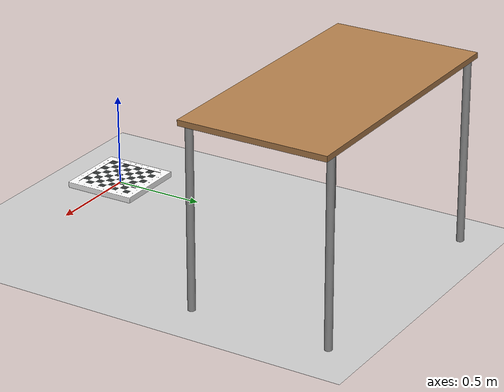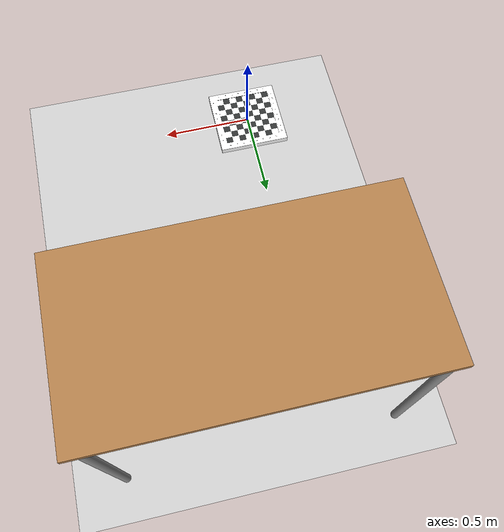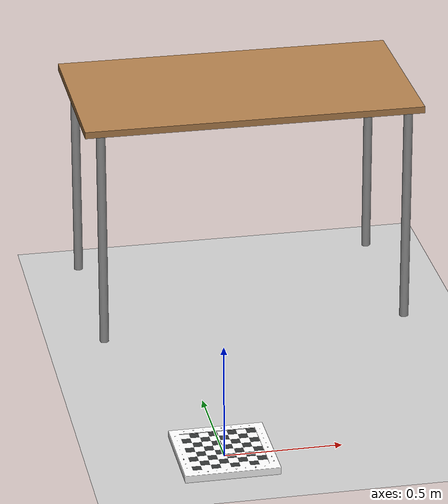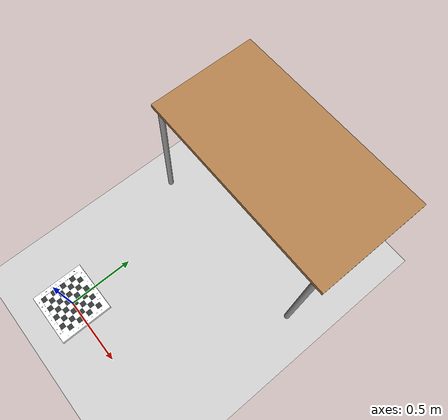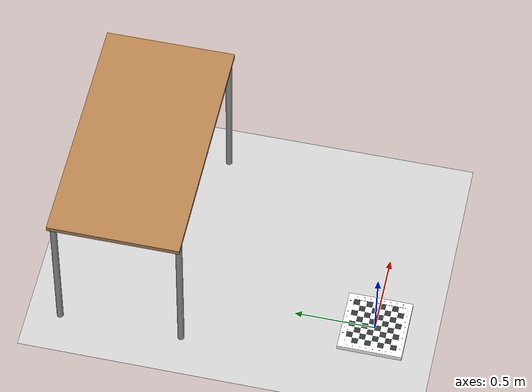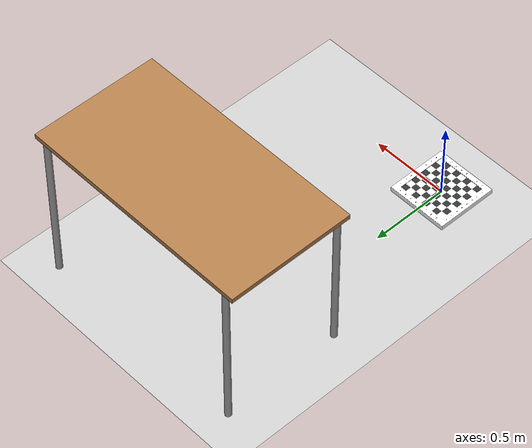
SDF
<sdf version="1.7">
 <world name="default">
  <light name="sun" type="directional">
   <pose>0 0 10 0 -0 0</pose>
   <diffuse>0.8 0.8 0.8 1</diffuse>
   <specular>0.2 0.2 0.2 1</specular>
   <attenuation>
    <range>1000</range>
    <constant>0.9</constant>
    <linear>0.01</linear>
    <quadratic>0.001</quadratic>
   </attenuation>
   <direction>-0.5 0.1 -0.9</direction>
   <spot><inner_angle>0</inner_angle><outer_angle>0</outer_angle><falloff>0</falloff></spot>
  </light>
  <model name="ground_plane">
   <static>1</static>
   <link name="link">
    <collision name="collision">
     <geometry><plane><normal>0 0 1</normal><size>100 100</size></plane></geometry>
     <surface>
      <contact><collide_bitmask>65535</collide_bitmask></contact>
      <friction><ode><mu>100</mu><mu2>50</mu2></ode></friction>
     </surface>
    </collision>
    <visual name="visual">
     <cast_shadows>0</cast_shadows>
     <geometry><plane><normal>0 0 1</normal><size>100 100</size></plane></geometry>
     <material>
      <script><uri>file://media/materials/scripts/gazebo.material</uri><name>Gazebo/Grey</name></script>
     </material>
    </visual>
   </link>
  </model>
  <gravity>0 0 -9.8</gravity>
  <magnetic_field>6e-06 2.3e-05 -4.2e-05</magnetic_field>
  <atmosphere type="adiabatic"/>
  <physics type="ode">
   <max_step_size>0.001</max_step_size>
   <real_time_factor>1</real_time_factor>
   <real_time_update_rate>1000</real_time_update_rate>
  </physics>
  <scene><ambient>0.4 0.4 0.4 1</ambient><background>0.7 0.7 0.7 1</background><shadows>0</shadows></scene>
  <spherical_coordinates>
   <surface_model>EARTH_WGS84</surface_model>
   <latitude_deg>0</latitude_deg>
   <longitude_deg>0</longitude_deg>
   <elevation>0</elevation>
   <heading_deg>0</heading_deg>
  </spherical_coordinates>
  <include><uri>model://chessboard</uri></include>
  <include><uri>model://table</uri></include>
 </world>
</sdf>

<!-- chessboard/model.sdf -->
<sdf version='1.7'>
  <model name='chessboard'>

      <link name='link'>
        <inertial>
          <pose>0 0 0.0165 0 -0 0</pose>
          <mass>0.5</mass>
          <inertia>
            <ixx>0.00950655</ixx>
            <ixy>0</ixy>
            <ixz>0</ixz>
            <iyy>0.00543452</iyy>
            <iyz>0</iyz>
            <izz>0.0114843</izz>
          </inertia>
        </inertial>
        <self_collide>0</self_collide>
        <enable_wind>0</enable_wind>
        <kinematic>0</kinematic>
        <pose>0 0 0 0 -0 0</pose>
        <visual name='main_visual'>
          <geometry>
            <mesh>
              <uri>model://chessboard/meshes/chessboard.dae</uri>
            </mesh>
          </geometry>
          <material>
            <script>
              <uri>model://chessboard/materials/untitled.mtl</uri>
              <name>__default__</name>
            </script>
          </material>
        </visual>
        <collision name='collision'>
          <laser_retro>0</laser_retro>
          <max_contacts>10</max_contacts>
          <pose>0 0 0 0 -0 0</pose>
          <geometry>
            <mesh>
              <uri>model://chessboard/meshes/chessboard.dae</uri>
            </mesh>
          </geometry>
          <surface>
            <contact>
              <ode/>
            </contact>
            <bounce/>
            <friction>
              <torsional>
                <ode/>
              </torsional>
              <ode/>
            </friction>
          </surface>
        </collision>
      </link>

    <static>1</static>

  </model>
</sdf>

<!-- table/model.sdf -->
<sdf version='1.7'>
    <model name='table'>
      <static>1</static>
      <link name='link'>
        <collision name='surface'>
          <pose>0 0 1 0 -0 0</pose>
          <geometry>
            <box>
              <size>1.5 0.8 0.03</size>
            </box>
          </geometry>
          <surface>
            <friction>
              <ode>
                <mu>0.6</mu>
                <mu2>0.6</mu2>
              </ode>
              <torsional>
                <ode/>
              </torsional>
            </friction>
            <contact>
              <ode/>
            </contact>
            <bounce/>
          </surface>
          <max_contacts>10</max_contacts>
        </collision>
        <visual name='visual1'>
          <pose>0 0 1 0 -0 0</pose>
          <geometry>
            <box>
              <size>1.5 0.8 0.03</size>
            </box>
          </geometry>
          <material>
            <script>
              <uri>file://media/materials/scripts/gazebo.material</uri>
              <name>Gazebo/Wood</name>
            </script>
          </material>
        </visual>
        <collision name='front_left_leg'>
          <pose>0.68 0.38 0.5 0 -0 0</pose>
          <geometry>
            <cylinder>
              <radius>0.02</radius>
              <length>1</length>
            </cylinder>
          </geometry>
          <max_contacts>10</max_contacts>
          <surface>
            <contact>
              <ode/>
            </contact>
            <bounce/>
            <friction>
              <torsional>
                <ode/>
              </torsional>
              <ode/>
            </friction>
          </surface>
        </collision>
        <visual name='front_left_leg'>
          <pose>0.68 0.38 0.5 0 -0 0</pose>
          <geometry>
            <cylinder>
              <radius>0.02</radius>
              <length>1</length>
            </cylinder>
          </geometry>
          <material>
            <script>
              <uri>file://media/materials/scripts/gazebo.material</uri>
              <name>Gazebo/Grey</name>
            </script>
          </material>
        </visual>
        <collision name='front_right_leg'>
          <pose>0.68 -0.38 0.5 0 -0 0</pose>
          <geometry>
            <cylinder>
              <radius>0.02</radius>
              <length>1</length>
            </cylinder>
          </geometry>
          <max_contacts>10</max_contacts>
          <surface>
            <contact>
              <ode/>
            </contact>
            <bounce/>
            <friction>
              <torsional>
                <ode/>
              </torsional>
              <ode/>
            </friction>
          </surface>
        </collision>
        <visual name='front_right_leg'>
          <pose>0.68 -0.38 0.5 0 -0 0</pose>
          <geometry>
            <cylinder>
              <radius>0.02</radius>
              <length>1</length>
            </cylinder>
          </geometry>
          <material>
            <script>
              <uri>file://media/materials/scripts/gazebo.material</uri>
              <name>Gazebo/Grey</name>
            </script>
          </material>
        </visual>
        <collision name='back_right_leg'>
          <pose>-0.68 -0.38 0.5 0 -0 0</pose>
          <geometry>
            <cylinder>
              <radius>0.02</radius>
              <length>1</length>
            </cylinder>
          </geometry>
          <max_contacts>10</max_contacts>
          <surface>
            <contact>
              <ode/>
            </contact>
            <bounce/>
            <friction>
              <torsional>
                <ode/>
              </torsional>
              <ode/>
            </friction>
          </surface>
        </collision>
        <visual name='back_right_leg'>
          <pose>-0.68 -0.38 0.5 0 -0 0</pose>
          <geometry>
            <cylinder>
              <radius>0.02</radius>
              <length>1</length>
            </cylinder>
          </geometry>
          <material>
            <script>
              <uri>file://media/materials/scripts/gazebo.material</uri>
              <name>Gazebo/Grey</name>
            </script>
          </material>
        </visual>
        <collision name='back_left_leg'>
          <pose>-0.68 0.38 0.5 0 -0 0</pose>
          <geometry>
            <cylinder>
              <radius>0.02</radius>
              <length>1</length>
            </cylinder>
          </geometry>
          <max_contacts>10</max_contacts>
          <surface>
            <contact>
              <ode/>
            </contact>
            <bounce/>
            <friction>
              <torsional>
                <ode/>
              </torsional>
              <ode/>
            </friction>
          </surface>
        </collision>
        <visual name='back_left_leg'>
          <pose>-0.68 0.38 0.5 0 -0 0</pose>
          <geometry>
            <cylinder>
              <radius>0.02</radius>
              <length>1</length>
            </cylinder>
          </geometry>
          <material>
            <script>
              <uri>file://media/materials/scripts/gazebo.material</uri>
              <name>Gazebo/Grey</name>
            </script>
          </material>
        </visual>
        <self_collide>0</self_collide>
        <enable_wind>0</enable_wind>
        <kinematic>0</kinematic>
      </link>
      <pose>0.35931 1.52307 0 0 -0 0</pose>
    </model>
    </sdf>
